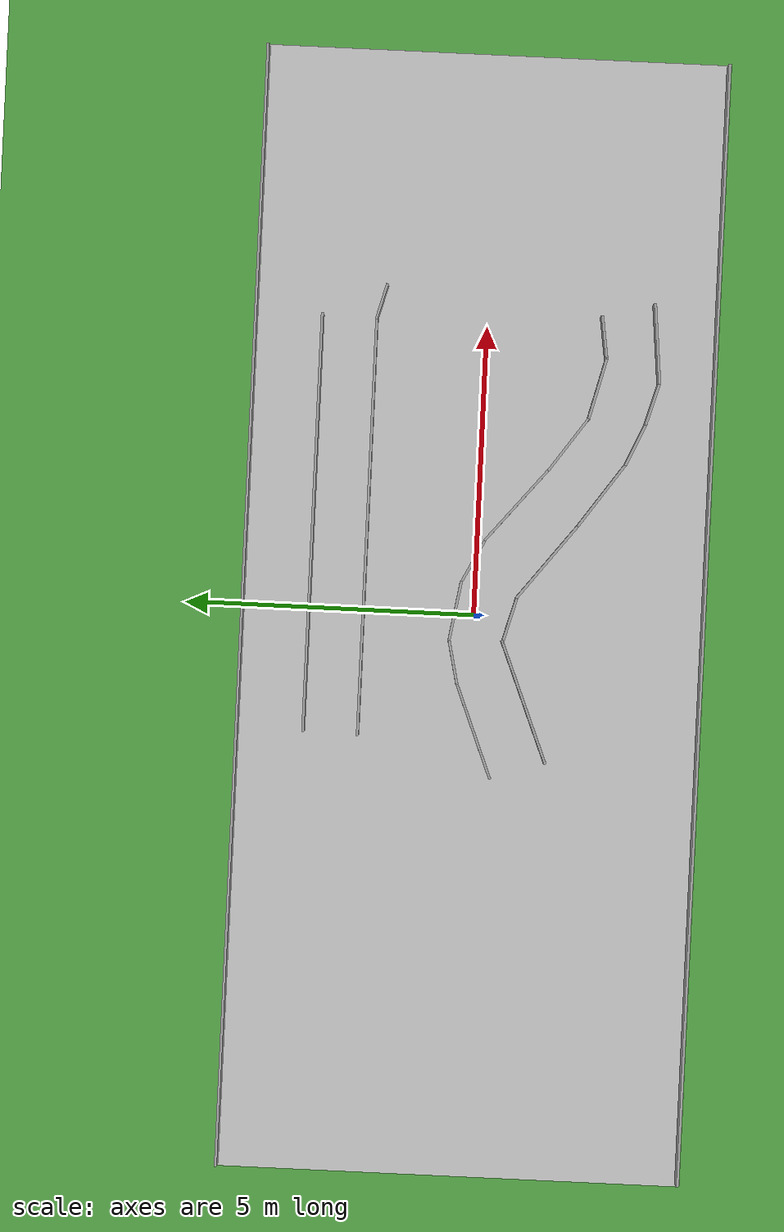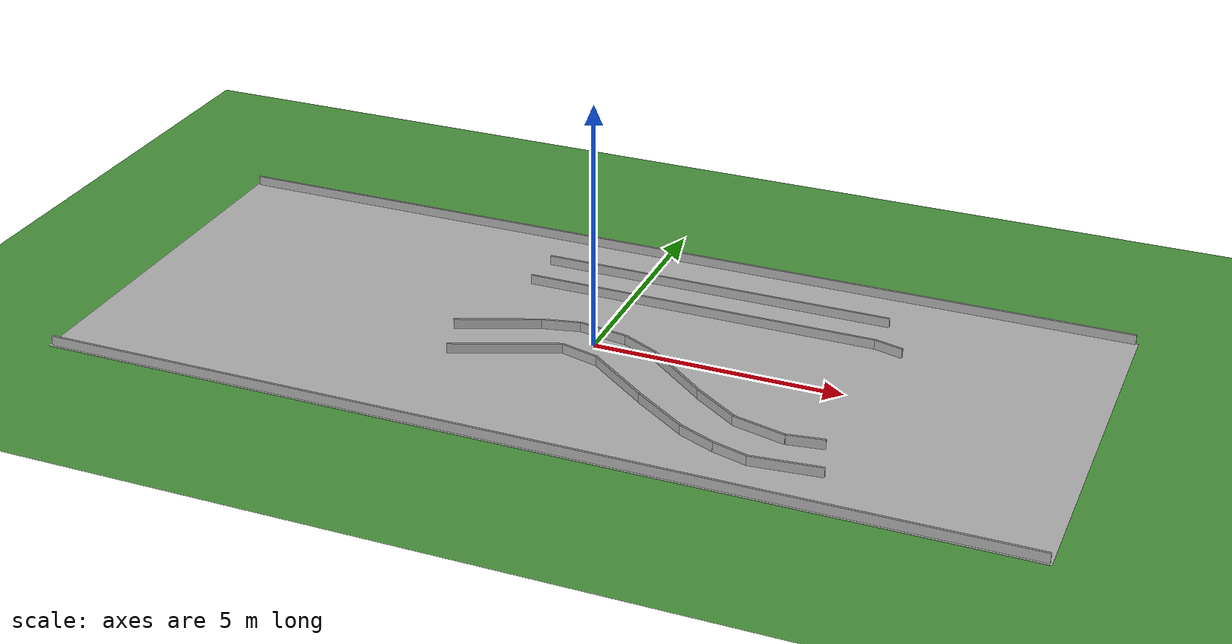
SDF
<sdf version="1.5">
 <world name="default">
  <model name="ground_grass">
   <static>1</static>
   <link name="ground_grass">
    <collision name="collision">
     <geometry><plane><normal>0 0 1</normal><size>50 50</size></plane></geometry>
     <surface><friction><ode><mu>100</mu><mu2>50</mu2></ode></friction></surface>
    </collision>
    <visual name="visual_ground">
     <cast_shadows>0</cast_shadows>
     <pose>0 0 0.005 0 -0 0</pose>
     <geometry><plane><normal>0 0 1</normal><size>50 50</size></plane></geometry>
     <material>
      <script>
       <uri>model://ground_grass/materials/scripts</uri>
       <uri>model://ground_grass/materials/textures</uri>
       <name>Floor/Grass</name>
      </script>
     </material>
    </visual>
    <velocity_decay><linear>0</linear><angular>0</angular></velocity_decay>
   </link>
  </model>
  <model name="ucsd_track_v1">
   <static>1</static>
   <link name="link_track">
    <collision name="collision">
     <geometry><plane><normal>0 0 1</normal><size>19.431 8.0264</size></plane></geometry>
     <surface><friction><ode><mu>100</mu><mu2>50</mu2></ode></friction></surface>
    </collision>
    <visual name="visual_ground">
     <cast_shadows>0</cast_shadows>
     <pose>0 0 0.005 0 -0 0</pose>
     <geometry><plane><normal>0 0 1</normal><size>19.431 8.0264</size></plane></geometry>
     <material>
      <script>
       <uri>model://ucsd_track_v1/materials/scripts</uri>
       <uri>model://ucsd_track_v1/materials/textures</uri>
       <name>Floor/Image</name>
      </script>
     </material>
    </visual>
    <velocity_decay><linear>0</linear><angular>0</angular></velocity_decay>
   </link>
   <pose>0 0 0.001 0 -0 0</pose>
  </model>
  <model name="grey_wall_1">
   <link name="link">
    <pose>0 0 1.4 0 0 -0.660395</pose>
    <inertial>
     <inertia><ixx>nan</ixx><ixy>0</ixy><ixz>0</ixz><iyy>nan</iyy><iyz>0</iyz><izz>nan</izz></inertia>
     <mass>0</mass>
    </inertial>
    <visual name="visual">
     <cast_shadows>0</cast_shadows>
     <geometry><box><size>1.62445 0.043266 0.226147</size></box></geometry>
     <material>
      <script>
       <uri>model://grey_wall/materials/scripts</uri>
       <uri>model://grey_wall/materials/textures</uri>
       <name>vrc/grey_wall</name>
      </script>
      <ambient>1 1 1 1</ambient>
      <diffuse>1 1 1 1</diffuse>
      <specular>0 0 0 1</specular>
      <emissive>0 0 0 1</emissive>
     </material>
    </visual>
    <collision name="collision">
     <geometry><box><size>1.62445 0.043266 0.226147</size></box></geometry>
     <surface>
      <friction>
       <ode><mu>1</mu><mu2>1</mu2><fdir1>0 0 0</fdir1><slip1>0</slip1><slip2>0</slip2></ode>
       <torsional>
        <coefficient>1</coefficient>
        <patch_radius>0</patch_radius>
        <surface_radius>0</surface_radius>
        <use_patch_radius>1</use_patch_radius>
        <ode><slip>0</slip></ode>
       </torsional>
      </friction>
      <bounce><restitution_coefficient>0</restitution_coefficient><threshold>1e+06</threshold></bounce>
      <contact>
       <collide_without_contact>0</collide_without_contact>
       <collide_without_contact_bitmask>1</collide_without_contact_bitmask>
       <collide_bitmask>1</collide_bitmask>
       <ode>
        <soft_cfm>0</soft_cfm>
        <soft_erp>0.2</soft_erp>
        <kp>1e+13</kp>
        <kd>1</kd>
        <max_vel>0.01</max_vel>
        <min_depth>0</min_depth>
       </ode>
       <bullet>
        <split_impulse>1</split_impulse>
        <split_impulse_penetration_threshold>-0.01</split_impulse_penetration_threshold>
        <soft_cfm>0</soft_cfm>
        <soft_erp>0.2</soft_erp>
        <kp>1e+13</kp>
        <kd>1</kd>
       </bullet>
      </contact>
     </surface>
    </collision>
   </link>
   <static>1</static>
   <pose>0.973487 -1.21034 -1.30469 0 -0 0</pose>
  </model>
  <model name="grey_wall_3">
   <link name="link">
    <pose>0.713484 -0.011654 1.4 0 -0 0</pose>
    <inertial>
     <inertia><ixx>nan</ixx><ixy>0</ixy><ixz>0</ixz><iyy>nan</iyy><iyz>0</iyz><izz>nan</izz></inertia>
     <mass>0</mass>
    </inertial>
    <visual name="visual">
     <cast_shadows>0</cast_shadows>
     <geometry><box><size>19.3332 0.043266 0.226147</size></box></geometry>
     <material>
      <script>
       <uri>model://grey_wall/materials/scripts</uri>
       <uri>model://grey_wall/materials/textures</uri>
       <name>vrc/grey_wall</name>
      </script>
      <ambient>1 1 1 1</ambient>
      <diffuse>1 1 1 1</diffuse>
      <specular>0 0 0 1</specular>
      <emissive>0 0 0 1</emissive>
     </material>
    </visual>
    <collision name="collision">
     <geometry><box><size>19.3332 0.043266 0.226147</size></box></geometry>
     <surface>
      <friction>
       <ode><mu>1</mu><mu2>1</mu2><fdir1>0 0 0</fdir1><slip1>0</slip1><slip2>0</slip2></ode>
       <torsional>
        <coefficient>1</coefficient>
        <patch_radius>0</patch_radius>
        <surface_radius>0</surface_radius>
        <use_patch_radius>1</use_patch_radius>
        <ode><slip>0</slip></ode>
       </torsional>
      </friction>
      <bounce><restitution_coefficient>0</restitution_coefficient><threshold>1e+06</threshold></bounce>
      <contact>
       <collide_without_contact>0</collide_without_contact>
       <collide_without_contact_bitmask>1</collide_without_contact_bitmask>
       <collide_bitmask>1</collide_bitmask>
       <ode>
        <soft_cfm>0</soft_cfm>
        <soft_erp>0.2</soft_erp>
        <kp>1e+13</kp>
        <kd>1</kd>
        <max_vel>0.01</max_vel>
        <min_depth>0</min_depth>
       </ode>
       <bullet>
        <split_impulse>1</split_impulse>
        <split_impulse_penetration_threshold>-0.01</split_impulse_penetration_threshold>
        <soft_cfm>0</soft_cfm>
        <soft_erp>0.2</soft_erp>
        <kp>1e+13</kp>
        <kd>1</kd>
       </bullet>
      </contact>
     </surface>
    </collision>
   </link>
   <static>1</static>
   <pose>-0.716038 4.0109 -1.30508 0 -0 0</pose>
  </model>
  <model name="grey_wall_4">
   <link name="link">
    <pose>0.713484 -0.011654 1.4 0 -0 0</pose>
    <inertial>
     <inertia><ixx>nan</ixx><ixy>0</ixy><ixz>0</ixz><iyy>nan</iyy><iyz>0</iyz><izz>nan</izz></inertia>
     <mass>0</mass>
    </inertial>
    <visual name="visual">
     <cast_shadows>0</cast_shadows>
     <geometry><box><size>19.3332 0.043266 0.226147</size></box></geometry>
     <material>
      <script>
       <uri>model://grey_wall/materials/scripts</uri>
       <uri>model://grey_wall/materials/textures</uri>
       <name>vrc/grey_wall</name>
      </script>
      <ambient>1 1 1 1</ambient>
      <diffuse>1 1 1 1</diffuse>
      <specular>0 0 0 1</specular>
      <emissive>0 0 0 1</emissive>
     </material>
    </visual>
    <collision name="collision">
     <geometry><box><size>19.3332 0.043266 0.226147</size></box></geometry>
     <surface>
      <friction>
       <ode><mu>1</mu><mu2>1</mu2><fdir1>0 0 0</fdir1><slip1>0</slip1><slip2>0</slip2></ode>
       <torsional>
        <coefficient>1</coefficient>
        <patch_radius>0</patch_radius>
        <surface_radius>0</surface_radius>
        <use_patch_radius>1</use_patch_radius>
        <ode><slip>0</slip></ode>
       </torsional>
      </friction>
      <bounce><restitution_coefficient>0</restitution_coefficient><threshold>1e+06</threshold></bounce>
      <contact>
       <collide_without_contact>0</collide_without_contact>
       <collide_without_contact_bitmask>1</collide_without_contact_bitmask>
       <collide_bitmask>1</collide_bitmask>
       <ode>
        <soft_cfm>0</soft_cfm>
        <soft_erp>0.2</soft_erp>
        <kp>1e+13</kp>
        <kd>1</kd>
        <max_vel>0.01</max_vel>
        <min_depth>0</min_depth>
       </ode>
       <bullet>
        <split_impulse>1</split_impulse>
        <split_impulse_penetration_threshold>-0.01</split_impulse_penetration_threshold>
        <soft_cfm>0</soft_cfm>
        <soft_erp>0.2</soft_erp>
        <kp>1e+13</kp>
        <kd>1</kd>
       </bullet>
      </contact>
     </surface>
    </collision>
   </link>
   <static>1</static>
   <pose>-0.701966 -3.93959 -1.30508 0 -0 0</pose>
  </model>
  <model name="grey_wall_12">
   <link name="link">
    <pose>0 0 1.4 0 -0 0.382885</pose>
    <inertial>
     <inertia><ixx>nan</ixx><ixy>0</ixy><ixz>0</ixz><iyy>nan</iyy><iyz>0</iyz><izz>nan</izz></inertia>
     <mass>0</mass>
    </inertial>
    <visual name="visual">
     <cast_shadows>0</cast_shadows>
     <geometry><box><size>2.25374 0.043266 0.226147</size></box></geometry>
     <material>
      <script>
       <uri>model://grey_wall/materials/scripts</uri>
       <uri>model://grey_wall/materials/textures</uri>
       <name>vrc/grey_wall</name>
      </script>
      <ambient>1 1 1 1</ambient>
      <diffuse>1 1 1 1</diffuse>
      <specular>0 0 0 1</specular>
      <emissive>0 0 0 1</emissive>
     </material>
    </visual>
    <collision name="collision">
     <geometry><box><size>2.25374 0.043266 0.226147</size></box></geometry>
     <surface>
      <friction>
       <ode><mu>1</mu><mu2>1</mu2><fdir1>0 0 0</fdir1><slip1>0</slip1><slip2>0</slip2></ode>
       <torsional>
        <coefficient>1</coefficient>
        <patch_radius>0</patch_radius>
        <surface_radius>0</surface_radius>
        <use_patch_radius>1</use_patch_radius>
        <ode><slip>0</slip></ode>
       </torsional>
      </friction>
      <bounce><restitution_coefficient>0</restitution_coefficient><threshold>1e+06</threshold></bounce>
      <contact>
       <collide_without_contact>0</collide_without_contact>
       <collide_without_contact_bitmask>1</collide_without_contact_bitmask>
       <collide_bitmask>1</collide_bitmask>
       <ode>
        <soft_cfm>0</soft_cfm>
        <soft_erp>0.2</soft_erp>
        <kp>1e+13</kp>
        <kd>1</kd>
        <max_vel>0.01</max_vel>
        <min_depth>0</min_depth>
       </ode>
       <bullet>
        <split_impulse>1</split_impulse>
        <split_impulse_penetration_threshold>-0.01</split_impulse_penetration_threshold>
        <soft_cfm>0</soft_cfm>
        <soft_erp>0.2</soft_erp>
        <kp>1e+13</kp>
        <kd>1</kd>
       </bullet>
      </contact>
     </surface>
    </collision>
   </link>
   <static>1</static>
   <pose>-1.45423 -0.91787 -1.30539 0 -0 0</pose>
  </model>
  <model name="grey_wall_13">
   <link name="link">
    <pose>0 0 1.4 0 0 -0.265752</pose>
    <inertial>
     <inertia><ixx>nan</ixx><ixy>0</ixy><ixz>0</ixz><iyy>nan</iyy><iyz>0</iyz><izz>nan</izz></inertia>
     <mass>0</mass>
    </inertial>
    <visual name="visual">
     <cast_shadows>0</cast_shadows>
     <geometry><box><size>0.835499 0.043266 0.226147</size></box></geometry>
     <material>
      <script>
       <uri>model://grey_wall/materials/scripts</uri>
       <uri>model://grey_wall/materials/textures</uri>
       <name>vrc/grey_wall</name>
      </script>
      <ambient>1 1 1 1</ambient>
      <diffuse>1 1 1 1</diffuse>
      <specular>0 0 0 1</specular>
      <emissive>0 0 0 1</emissive>
     </material>
    </visual>
    <collision name="collision">
     <geometry><box><size>0.835499 0.043266 0.226147</size></box></geometry>
     <surface>
      <friction>
       <ode><mu>1</mu><mu2>1</mu2><fdir1>0 0 0</fdir1><slip1>0</slip1><slip2>0</slip2></ode>
       <torsional>
        <coefficient>1</coefficient>
        <patch_radius>0</patch_radius>
        <surface_radius>0</surface_radius>
        <use_patch_radius>1</use_patch_radius>
        <ode><slip>0</slip></ode>
       </torsional>
      </friction>
      <bounce><restitution_coefficient>0</restitution_coefficient><threshold>1e+06</threshold></bounce>
      <contact>
       <collide_without_contact>0</collide_without_contact>
       <collide_without_contact_bitmask>1</collide_without_contact_bitmask>
       <collide_bitmask>1</collide_bitmask>
       <ode>
        <soft_cfm>0</soft_cfm>
        <soft_erp>0.2</soft_erp>
        <kp>1e+13</kp>
        <kd>1</kd>
        <max_vel>0.01</max_vel>
        <min_depth>0</min_depth>
       </ode>
       <bullet>
        <split_impulse>1</split_impulse>
        <split_impulse_penetration_threshold>-0.01</split_impulse_penetration_threshold>
        <soft_cfm>0</soft_cfm>
        <soft_erp>0.2</soft_erp>
        <kp>1e+13</kp>
        <kd>1</kd>
       </bullet>
      </contact>
     </surface>
    </collision>
   </link>
   <static>1</static>
   <pose>-0.042418 -0.617739 -1.30539 0 -0 0</pose>
  </model>
  <model name="grey_wall_17">
   <link name="link">
    <pose>0 0 1.4 0 -0 0</pose>
    <inertial>
     <inertia><ixx>nan</ixx><ixy>0</ixy><ixz>0</ixz><iyy>nan</iyy><iyz>0</iyz><izz>nan</izz></inertia>
     <mass>0</mass>
    </inertial>
    <visual name="visual">
     <cast_shadows>0</cast_shadows>
     <geometry><box><size>7.20978 0.043266 0.226147</size></box></geometry>
     <material>
      <script>
       <uri>model://grey_wall/materials/scripts</uri>
       <uri>model://grey_wall/materials/textures</uri>
       <name>vrc/grey_wall</name>
      </script>
      <ambient>1 1 1 1</ambient>
      <diffuse>1 1 1 1</diffuse>
      <specular>0 0 0 1</specular>
      <emissive>0 0 0 1</emissive>
     </material>
    </visual>
    <collision name="collision">
     <geometry><box><size>7.20978 0.043266 0.226147</size></box></geometry>
     <surface>
      <friction>
       <ode><mu>1</mu><mu2>1</mu2><fdir1>0 0 0</fdir1><slip1>0</slip1><slip2>0</slip2></ode>
       <torsional>
        <coefficient>1</coefficient>
        <patch_radius>0</patch_radius>
        <surface_radius>0</surface_radius>
        <use_patch_radius>1</use_patch_radius>
        <ode><slip>0</slip></ode>
       </torsional>
      </friction>
      <bounce><restitution_coefficient>0</restitution_coefficient><threshold>1e+06</threshold></bounce>
      <contact>
       <collide_without_contact>0</collide_without_contact>
       <collide_without_contact_bitmask>1</collide_without_contact_bitmask>
       <collide_bitmask>1</collide_bitmask>
       <ode>
        <soft_cfm>0</soft_cfm>
        <soft_erp>0.2</soft_erp>
        <kp>1e+13</kp>
        <kd>1</kd>
        <max_vel>0.01</max_vel>
        <min_depth>0</min_depth>
       </ode>
       <bullet>
        <split_impulse>1</split_impulse>
        <split_impulse_penetration_threshold>-0.01</split_impulse_penetration_threshold>
        <soft_cfm>0</soft_cfm>
        <soft_erp>0.2</soft_erp>
        <kp>1e+13</kp>
        <kd>1</kd>
       </bullet>
      </contact>
     </surface>
    </collision>
   </link>
   <static>1</static>
   <pose>1.44796 1.9115 -1.30759 0 -0 0</pose>
  </model>
  <model name="grey_wall_18">
   <link name="link">
    <pose>0 0 1.4 0 -0 0</pose>
    <inertial>
     <inertia><ixx>nan</ixx><ixy>0</ixy><ixz>0</ixz><iyy>nan</iyy><iyz>0</iyz><izz>nan</izz></inertia>
     <mass>0</mass>
    </inertial>
    <visual name="visual">
     <cast_shadows>0</cast_shadows>
     <geometry><box><size>7.20978 0.043266 0.226147</size></box></geometry>
     <material>
      <script>
       <uri>model://grey_wall/materials/scripts</uri>
       <uri>model://grey_wall/materials/textures</uri>
       <name>vrc/grey_wall</name>
      </script>
      <ambient>1 1 1 1</ambient>
      <diffuse>1 1 1 1</diffuse>
      <specular>0 0 0 1</specular>
      <emissive>0 0 0 1</emissive>
     </material>
    </visual>
    <collision name="collision">
     <geometry><box><size>7.20978 0.043266 0.226147</size></box></geometry>
     <surface>
      <friction>
       <ode><mu>1</mu><mu2>1</mu2><fdir1>0 0 0</fdir1><slip1>0</slip1><slip2>0</slip2></ode>
       <torsional>
        <coefficient>1</coefficient>
        <patch_radius>0</patch_radius>
        <surface_radius>0</surface_radius>
        <use_patch_radius>1</use_patch_radius>
        <ode><slip>0</slip></ode>
       </torsional>
      </friction>
      <bounce><restitution_coefficient>0</restitution_coefficient><threshold>1e+06</threshold></bounce>
      <contact>
       <collide_without_contact>0</collide_without_contact>
       <collide_without_contact_bitmask>1</collide_without_contact_bitmask>
       <collide_bitmask>1</collide_bitmask>
       <ode>
        <soft_cfm>0</soft_cfm>
        <soft_erp>0.2</soft_erp>
        <kp>1e+13</kp>
        <kd>1</kd>
        <max_vel>0.01</max_vel>
        <min_depth>0</min_depth>
       </ode>
       <bullet>
        <split_impulse>1</split_impulse>
        <split_impulse_penetration_threshold>-0.01</split_impulse_penetration_threshold>
        <soft_cfm>0</soft_cfm>
        <soft_erp>0.2</soft_erp>
        <kp>1e+13</kp>
        <kd>1</kd>
       </bullet>
      </contact>
     </surface>
    </collision>
   </link>
   <static>1</static>
   <pose>1.47433 2.85123 -1.30759 0 -0 0</pose>
  </model>
  <model name="grey_wall_26">
   <link name="link">
    <pose>0.696537 0.076716 1.4 0 -0 0.222578</pose>
    <inertial>
     <inertia><ixx>nan</ixx><ixy>0</ixy><ixz>0</ixz><iyy>nan</iyy><iyz>0</iyz><izz>nan</izz></inertia>
     <mass>0</mass>
    </inertial>
    <visual name="visual">
     <cast_shadows>0</cast_shadows>
     <geometry><box><size>0.800766 0.043266 0.226147</size></box></geometry>
     <material>
      <script>
       <uri>model://grey_wall/materials/scripts</uri>
       <uri>model://grey_wall/materials/textures</uri>
       <name>vrc/grey_wall</name>
      </script>
      <ambient>1 1 1 1</ambient>
      <diffuse>1 1 1 1</diffuse>
      <specular>0 0 0 1</specular>
      <emissive>0 0 0 1</emissive>
     </material>
    </visual>
    <collision name="collision">
     <geometry><box><size>0.800766 0.043266 0.226147</size></box></geometry>
     <surface>
      <friction>
       <ode><mu>1</mu><mu2>1</mu2><fdir1>0 0 0</fdir1><slip1>0</slip1><slip2>0</slip2></ode>
       <torsional>
        <coefficient>1</coefficient>
        <patch_radius>0</patch_radius>
        <surface_radius>0</surface_radius>
        <use_patch_radius>1</use_patch_radius>
        <ode><slip>0</slip></ode>
       </torsional>
      </friction>
      <bounce><restitution_coefficient>0</restitution_coefficient><threshold>1e+06</threshold></bounce>
      <contact>
       <collide_without_contact>0</collide_without_contact>
       <collide_without_contact_bitmask>1</collide_without_contact_bitmask>
       <collide_bitmask>1</collide_bitmask>
       <ode>
        <soft_cfm>0</soft_cfm>
        <soft_erp>0.2</soft_erp>
        <kp>1e+13</kp>
        <kd>1</kd>
        <max_vel>0.01</max_vel>
        <min_depth>0</min_depth>
       </ode>
       <bullet>
        <split_impulse>1</split_impulse>
        <split_impulse_penetration_threshold>-0.01</split_impulse_penetration_threshold>
        <soft_cfm>0</soft_cfm>
        <soft_erp>0.2</soft_erp>
        <kp>1e+13</kp>
        <kd>1</kd>
       </bullet>
      </contact>
     </surface>
    </collision>
   </link>
   <static>1</static>
   <pose>-1.52613 0.248203 -1.30539 0 -0 0</pose>
  </model>
  <model name="grey_wall_27">
   <link name="link">
    <pose>0.075205 -0.060141 1.4 0 -0 0.379695</pose>
    <inertial>
     <inertia><ixx>nan</ixx><ixy>0</ixy><ixz>0</ixz><iyy>nan</iyy><iyz>0</iyz><izz>nan</izz></inertia>
     <mass>0</mass>
    </inertial>
    <visual name="visual">
     <cast_shadows>0</cast_shadows>
     <geometry><box><size>1.72288 0.043266 0.226147</size></box></geometry>
     <material>
      <script>
       <uri>model://grey_wall/materials/scripts</uri>
       <uri>model://grey_wall/materials/textures</uri>
       <name>vrc/grey_wall</name>
      </script>
      <ambient>1 1 1 1</ambient>
      <diffuse>1 1 1 1</diffuse>
      <specular>0 0 0 1</specular>
      <emissive>0 0 0 1</emissive>
     </material>
    </visual>
    <collision name="collision">
     <geometry><box><size>1.72288 0.043266 0.226147</size></box></geometry>
     <surface>
      <friction>
       <ode><mu>1</mu><mu2>1</mu2><fdir1>0 0 0</fdir1><slip1>0</slip1><slip2>0</slip2></ode>
       <torsional>
        <coefficient>1</coefficient>
        <patch_radius>0</patch_radius>
        <surface_radius>0</surface_radius>
        <use_patch_radius>1</use_patch_radius>
        <ode><slip>0</slip></ode>
       </torsional>
      </friction>
      <bounce><restitution_coefficient>0</restitution_coefficient><threshold>1e+06</threshold></bounce>
      <contact>
       <collide_without_contact>0</collide_without_contact>
       <collide_without_contact_bitmask>1</collide_without_contact_bitmask>
       <collide_bitmask>1</collide_bitmask>
       <ode>
        <soft_cfm>0</soft_cfm>
        <soft_erp>0.2</soft_erp>
        <kp>1e+13</kp>
        <kd>1</kd>
        <max_vel>0.01</max_vel>
        <min_depth>0</min_depth>
       </ode>
       <bullet>
        <split_impulse>1</split_impulse>
        <split_impulse_penetration_threshold>-0.01</split_impulse_penetration_threshold>
        <soft_cfm>0</soft_cfm>
        <soft_erp>0.2</soft_erp>
        <kp>1e+13</kp>
        <kd>1</kd>
       </bullet>
      </contact>
     </surface>
    </collision>
   </link>
   <static>1</static>
   <pose>-2.07457 -0.020126 -1.30331 0 -0 0</pose>
  </model>
  <model name="grey_wall_28">
   <link name="link">
    <pose>0 0 1.4 0 0 -0.690491</pose>
    <inertial>
     <inertia><ixx>nan</ixx><ixy>0</ixy><ixz>0</ixz><iyy>nan</iyy><iyz>0</iyz><izz>nan</izz></inertia>
     <mass>0</mass>
    </inertial>
    <visual name="visual">
     <cast_shadows>0</cast_shadows>
     <geometry><box><size>1.62445 0.043266 0.226147</size></box></geometry>
     <material>
      <script>
       <uri>model://grey_wall/materials/scripts</uri>
       <uri>model://grey_wall/materials/textures</uri>
       <name>vrc/grey_wall</name>
      </script>
      <ambient>1 1 1 1</ambient>
      <diffuse>1 1 1 1</diffuse>
      <specular>0 0 0 1</specular>
      <emissive>0 0 0 1</emissive>
     </material>
    </visual>
    <collision name="collision">
     <geometry><box><size>1.62445 0.043266 0.226147</size></box></geometry>
     <surface>
      <friction>
       <ode><mu>1</mu><mu2>1</mu2><fdir1>0 0 0</fdir1><slip1>0</slip1><slip2>0</slip2></ode>
       <torsional>
        <coefficient>1</coefficient>
        <patch_radius>0</patch_radius>
        <surface_radius>0</surface_radius>
        <use_patch_radius>1</use_patch_radius>
        <ode><slip>0</slip></ode>
       </torsional>
      </friction>
      <bounce><restitution_coefficient>0</restitution_coefficient><threshold>1e+06</threshold></bounce>
      <contact>
       <collide_without_contact>0</collide_without_contact>
       <collide_without_contact_bitmask>1</collide_without_contact_bitmask>
       <collide_bitmask>1</collide_bitmask>
       <ode>
        <soft_cfm>0</soft_cfm>
        <soft_erp>0.2</soft_erp>
        <kp>1e+13</kp>
        <kd>1</kd>
        <max_vel>0.01</max_vel>
        <min_depth>0</min_depth>
       </ode>
       <bullet>
        <split_impulse>1</split_impulse>
        <split_impulse_penetration_threshold>-0.01</split_impulse_penetration_threshold>
        <soft_cfm>0</soft_cfm>
        <soft_erp>0.2</soft_erp>
        <kp>1e+13</kp>
        <kd>1</kd>
       </bullet>
      </contact>
     </surface>
    </collision>
   </link>
   <static>1</static>
   <pose>1.9243 -0.636533 -1.30469 0 -0 0</pose>
  </model>
  <model name="grey_wall_29">
   <link name="link">
    <pose>0.513561 -0.234559 1.4 0 0 -0.470145</pose>
    <inertial>
     <inertia><ixx>nan</ixx><ixy>0</ixy><ixz>0</ixz><iyy>nan</iyy><iyz>0</iyz><izz>nan</izz></inertia>
     <mass>0</mass>
    </inertial>
    <visual name="visual">
     <cast_shadows>0</cast_shadows>
     <geometry><box><size>0.850335 0.043266 0.226147</size></box></geometry>
     <material>
      <script>
       <uri>model://grey_wall/materials/scripts</uri>
       <uri>model://grey_wall/materials/textures</uri>
       <name>vrc/grey_wall</name>
      </script>
      <ambient>1 1 1 1</ambient>
      <diffuse>1 1 1 1</diffuse>
      <specular>0 0 0 1</specular>
      <emissive>0 0 0 1</emissive>
     </material>
    </visual>
    <collision name="collision">
     <geometry><box><size>0.850335 0.043266 0.226147</size></box></geometry>
     <surface>
      <friction>
       <ode><mu>1</mu><mu2>1</mu2><fdir1>0 0 0</fdir1><slip1>0</slip1><slip2>0</slip2></ode>
       <torsional>
        <coefficient>1</coefficient>
        <patch_radius>0</patch_radius>
        <surface_radius>0</surface_radius>
        <use_patch_radius>1</use_patch_radius>
        <ode><slip>0</slip></ode>
       </torsional>
      </friction>
      <bounce><restitution_coefficient>0</restitution_coefficient><threshold>1e+06</threshold></bounce>
      <contact>
       <collide_without_contact>0</collide_without_contact>
       <collide_without_contact_bitmask>1</collide_without_contact_bitmask>
       <collide_bitmask>1</collide_bitmask>
       <ode>
        <soft_cfm>0</soft_cfm>
        <soft_erp>0.2</soft_erp>
        <kp>1e+13</kp>
        <kd>1</kd>
        <max_vel>0.01</max_vel>
        <min_depth>0</min_depth>
       </ode>
       <bullet>
        <split_impulse>1</split_impulse>
        <split_impulse_penetration_threshold>-0.01</split_impulse_penetration_threshold>
        <soft_cfm>0</soft_cfm>
        <soft_erp>0.2</soft_erp>
        <kp>1e+13</kp>
        <kd>1</kd>
       </bullet>
      </contact>
     </surface>
    </collision>
   </link>
   <static>1</static>
   <pose>0.423351 0.292484 -1.30552 0 -0 0</pose>
  </model>
  <model name="grey_wall_30">
   <link name="link">
    <pose>0.178472 -0.112837 1.4 0 0 -0.161294</pose>
    <inertial>
     <inertia><ixx>nan</ixx><ixy>0</ixy><ixz>0</ixz><iyy>nan</iyy><iyz>0</iyz><izz>nan</izz></inertia>
     <mass>0</mass>
    </inertial>
    <visual name="visual">
     <cast_shadows>0</cast_shadows>
     <geometry><box><size>1.0471 0.043266 0.226147</size></box></geometry>
     <material>
      <script>
       <uri>model://grey_wall/materials/scripts</uri>
       <uri>model://grey_wall/materials/textures</uri>
       <name>vrc/grey_wall</name>
      </script>
      <ambient>1 1 1 1</ambient>
      <diffuse>1 1 1 1</diffuse>
      <specular>0 0 0 1</specular>
      <emissive>0 0 0 1</emissive>
     </material>
    </visual>
    <collision name="collision">
     <geometry><box><size>1.0471 0.043266 0.226147</size></box></geometry>
     <surface>
      <friction>
       <ode><mu>1</mu><mu2>1</mu2><fdir1>0 0 0</fdir1><slip1>0</slip1><slip2>0</slip2></ode>
       <torsional>
        <coefficient>1</coefficient>
        <patch_radius>0</patch_radius>
        <surface_radius>0</surface_radius>
        <use_patch_radius>1</use_patch_radius>
        <ode><slip>0</slip></ode>
       </torsional>
      </friction>
      <bounce><restitution_coefficient>0</restitution_coefficient><threshold>1e+06</threshold></bounce>
      <contact>
       <collide_without_contact>0</collide_without_contact>
       <collide_without_contact_bitmask>1</collide_without_contact_bitmask>
       <collide_bitmask>1</collide_bitmask>
       <ode>
        <soft_cfm>0</soft_cfm>
        <soft_erp>0.2</soft_erp>
        <kp>1e+13</kp>
        <kd>1</kd>
        <max_vel>0.01</max_vel>
        <min_depth>0</min_depth>
       </ode>
       <bullet>
        <split_impulse>1</split_impulse>
        <split_impulse_penetration_threshold>-0.01</split_impulse_penetration_threshold>
        <soft_cfm>0</soft_cfm>
        <soft_erp>0.2</soft_erp>
        <kp>1e+13</kp>
        <kd>1</kd>
       </bullet>
      </contact>
     </surface>
    </collision>
   </link>
   <static>1</static>
   <pose>-0.114316 0.442475 -1.30539 0 -0 0</pose>
  </model>
  <model name="grey_wall_31">
   <link name="link">
    <pose>-0.158404 0.045001 1.4 0 0 -0.613938</pose>
    <inertial>
     <inertia><ixx>nan</ixx><ixy>0</ixy><ixz>0</ixz><iyy>nan</iyy><iyz>0</iyz><izz>nan</izz></inertia>
     <mass>0</mass>
    </inertial>
    <visual name="visual">
     <cast_shadows>0</cast_shadows>
     <geometry><box><size>1.13903 0.043266 0.226147</size></box></geometry>
     <material>
      <script>
       <uri>model://grey_wall/materials/scripts</uri>
       <uri>model://grey_wall/materials/textures</uri>
       <name>vrc/grey_wall</name>
      </script>
      <ambient>1 1 1 1</ambient>
      <diffuse>1 1 1 1</diffuse>
      <specular>0 0 0 1</specular>
      <emissive>0 0 0 1</emissive>
     </material>
    </visual>
    <collision name="collision">
     <geometry><box><size>1.13903 0.043266 0.226147</size></box></geometry>
     <surface>
      <friction>
       <ode><mu>1</mu><mu2>1</mu2><fdir1>0 0 0</fdir1><slip1>0</slip1><slip2>0</slip2></ode>
       <torsional>
        <coefficient>1</coefficient>
        <patch_radius>0</patch_radius>
        <surface_radius>0</surface_radius>
        <use_patch_radius>1</use_patch_radius>
        <ode><slip>0</slip></ode>
       </torsional>
      </friction>
      <bounce><restitution_coefficient>0</restitution_coefficient><threshold>1e+06</threshold></bounce>
      <contact>
       <collide_without_contact>0</collide_without_contact>
       <collide_without_contact_bitmask>1</collide_without_contact_bitmask>
       <collide_bitmask>1</collide_bitmask>
       <ode>
        <soft_cfm>0</soft_cfm>
        <soft_erp>0.2</soft_erp>
        <kp>1e+13</kp>
        <kd>1</kd>
        <max_vel>0.01</max_vel>
        <min_depth>0</min_depth>
       </ode>
       <bullet>
        <split_impulse>1</split_impulse>
        <split_impulse_penetration_threshold>-0.01</split_impulse_penetration_threshold>
        <soft_cfm>0</soft_cfm>
        <soft_erp>0.2</soft_erp>
        <kp>1e+13</kp>
        <kd>1</kd>
       </bullet>
      </contact>
     </surface>
    </collision>
   </link>
   <static>1</static>
   <pose>3.16473 -1.52452 -1.30469 0 -0 0</pose>
  </model>
  <model name="grey_wall_32">
   <link name="link">
    <pose>-0.029415 -0.005021 1.4 0 0 -0.614085</pose>
    <inertial>
     <inertia><ixx>nan</ixx><ixy>0</ixy><ixz>0</ixz><iyy>nan</iyy><iyz>0</iyz><izz>nan</izz></inertia>
     <mass>0</mass>
    </inertial>
    <visual name="visual">
     <cast_shadows>0</cast_shadows>
     <geometry><box><size>1.36861 0.043266 0.226147</size></box></geometry>
     <material>
      <script>
       <uri>model://grey_wall/materials/scripts</uri>
       <uri>model://grey_wall/materials/textures</uri>
       <name>vrc/grey_wall</name>
      </script>
      <ambient>1 1 1 1</ambient>
      <diffuse>1 1 1 1</diffuse>
      <specular>0 0 0 1</specular>
      <emissive>0 0 0 1</emissive>
     </material>
    </visual>
    <collision name="collision">
     <geometry><box><size>1.36861 0.043266 0.226147</size></box></geometry>
     <surface>
      <friction>
       <ode><mu>1</mu><mu2>1</mu2><fdir1>0 0 0</fdir1><slip1>0</slip1><slip2>0</slip2></ode>
       <torsional>
        <coefficient>1</coefficient>
        <patch_radius>0</patch_radius>
        <surface_radius>0</surface_radius>
        <use_patch_radius>1</use_patch_radius>
        <ode><slip>0</slip></ode>
       </torsional>
      </friction>
      <bounce><restitution_coefficient>0</restitution_coefficient><threshold>1e+06</threshold></bounce>
      <contact>
       <collide_without_contact>0</collide_without_contact>
       <collide_without_contact_bitmask>1</collide_without_contact_bitmask>
       <collide_bitmask>1</collide_bitmask>
       <ode>
        <soft_cfm>0</soft_cfm>
        <soft_erp>0.2</soft_erp>
        <kp>1e+13</kp>
        <kd>1</kd>
        <max_vel>0.01</max_vel>
        <min_depth>0</min_depth>
       </ode>
       <bullet>
        <split_impulse>1</split_impulse>
        <split_impulse_penetration_threshold>-0.01</split_impulse_penetration_threshold>
        <soft_cfm>0</soft_cfm>
        <soft_erp>0.2</soft_erp>
        <kp>1e+13</kp>
        <kd>1</kd>
       </bullet>
      </contact>
     </surface>
    </collision>
   </link>
   <static>1</static>
   <pose>2.17576 -2.07883 -1.30469 0 -0 0</pose>
  </model>
  <model name="grey_wall_33">
   <link name="link">
    <pose>-0.098349 0.008745 1.4 0 0 -0.277377</pose>
    <inertial>
     <inertia><ixx>nan</ixx><ixy>0</ixy><ixz>0</ixz><iyy>nan</iyy><iyz>0</iyz><izz>nan</izz></inertia>
     <mass>0</mass>
    </inertial>
    <visual name="visual">
     <cast_shadows>0</cast_shadows>
     <geometry><box><size>0.74199 0.043266 0.226147</size></box></geometry>
     <material>
      <script>
       <uri>model://grey_wall/materials/scripts</uri>
       <uri>model://grey_wall/materials/textures</uri>
       <name>vrc/grey_wall</name>
      </script>
      <ambient>1 1 1 1</ambient>
      <diffuse>1 1 1 1</diffuse>
      <specular>0 0 0 1</specular>
      <emissive>0 0 0 1</emissive>
     </material>
    </visual>
    <collision name="collision">
     <geometry><box><size>0.74199 0.043266 0.226147</size></box></geometry>
     <surface>
      <friction>
       <ode><mu>1</mu><mu2>1</mu2><fdir1>0 0 0</fdir1><slip1>0</slip1><slip2>0</slip2></ode>
       <torsional>
        <coefficient>1</coefficient>
        <patch_radius>0</patch_radius>
        <surface_radius>0</surface_radius>
        <use_patch_radius>1</use_patch_radius>
        <ode><slip>0</slip></ode>
       </torsional>
      </friction>
      <bounce><restitution_coefficient>0</restitution_coefficient><threshold>1e+06</threshold></bounce>
      <contact>
       <collide_without_contact>0</collide_without_contact>
       <collide_without_contact_bitmask>1</collide_without_contact_bitmask>
       <collide_bitmask>1</collide_bitmask>
       <ode>
        <soft_cfm>0</soft_cfm>
        <soft_erp>0.2</soft_erp>
        <kp>1e+13</kp>
        <kd>1</kd>
        <max_vel>0.01</max_vel>
        <min_depth>0</min_depth>
       </ode>
       <bullet>
        <split_impulse>1</split_impulse>
        <split_impulse_penetration_threshold>-0.01</split_impulse_penetration_threshold>
        <soft_cfm>0</soft_cfm>
        <soft_erp>0.2</soft_erp>
        <kp>1e+13</kp>
        <kd>1</kd>
       </bullet>
      </contact>
     </surface>
    </collision>
   </link>
   <static>1</static>
   <pose>3.86395 -2.90069 -1.30469 0 -0 0</pose>
  </model>
  <model name="grey_wall_34">
   <link name="link">
    <pose>-0.049018 0.053505 1.4 0 0 -0.416993</pose>
    <inertial>
     <inertia><ixx>nan</ixx><ixy>0</ixy><ixz>0</ixz><iyy>nan</iyy><iyz>0</iyz><izz>nan</izz></inertia>
     <mass>0</mass>
    </inertial>
    <visual name="visual">
     <cast_shadows>0</cast_shadows>
     <geometry><box><size>0.80991 0.043266 0.226147</size></box></geometry>
     <material>
      <script>
       <uri>model://grey_wall/materials/scripts</uri>
       <uri>model://grey_wall/materials/textures</uri>
       <name>vrc/grey_wall</name>
      </script>
      <ambient>1 1 1 1</ambient>
      <diffuse>1 1 1 1</diffuse>
      <specular>0 0 0 1</specular>
      <emissive>0 0 0 1</emissive>
     </material>
    </visual>
    <collision name="collision">
     <geometry><box><size>0.80991 0.043266 0.226147</size></box></geometry>
     <surface>
      <friction>
       <ode><mu>1</mu><mu2>1</mu2><fdir1>0 0 0</fdir1><slip1>0</slip1><slip2>0</slip2></ode>
       <torsional>
        <coefficient>1</coefficient>
        <patch_radius>0</patch_radius>
        <surface_radius>0</surface_radius>
        <use_patch_radius>1</use_patch_radius>
        <ode><slip>0</slip></ode>
       </torsional>
      </friction>
      <bounce><restitution_coefficient>0</restitution_coefficient><threshold>1e+06</threshold></bounce>
      <contact>
       <collide_without_contact>0</collide_without_contact>
       <collide_without_contact_bitmask>1</collide_without_contact_bitmask>
       <collide_bitmask>1</collide_bitmask>
       <ode>
        <soft_cfm>0</soft_cfm>
        <soft_erp>0.2</soft_erp>
        <kp>1e+13</kp>
        <kd>1</kd>
        <max_vel>0.01</max_vel>
        <min_depth>0</min_depth>
       </ode>
       <bullet>
        <split_impulse>1</split_impulse>
        <split_impulse_penetration_threshold>-0.01</split_impulse_penetration_threshold>
        <soft_cfm>0</soft_cfm>
        <soft_erp>0.2</soft_erp>
        <kp>1e+13</kp>
        <kd>1</kd>
       </bullet>
      </contact>
     </surface>
    </collision>
   </link>
   <static>1</static>
   <pose>3.10185 -2.6852 -1.30469 0 -0 0</pose>
  </model>
  <model name="grey_wall_35">
   <link name="link">
    <pose>0.0163 0.042642 1.4 0 -0 0.098139</pose>
    <inertial>
     <inertia><ixx>nan</ixx><ixy>0</ixy><ixz>0</ixz><iyy>nan</iyy><iyz>0</iyz><izz>nan</izz></inertia>
     <mass>0</mass>
    </inertial>
    <visual name="visual">
     <cast_shadows>0</cast_shadows>
     <geometry><box><size>1.40091 0.043266 0.226147</size></box></geometry>
     <material>
      <script>
       <uri>model://grey_wall/materials/scripts</uri>
       <uri>model://grey_wall/materials/textures</uri>
       <name>vrc/grey_wall</name>
      </script>
      <ambient>1 1 1 1</ambient>
      <diffuse>1 1 1 1</diffuse>
      <specular>0 0 0 1</specular>
      <emissive>0 0 0 1</emissive>
     </material>
    </visual>
    <collision name="collision">
     <geometry><box><size>1.40091 0.043266 0.226147</size></box></geometry>
     <surface>
      <friction>
       <ode><mu>1</mu><mu2>1</mu2><fdir1>0 0 0</fdir1><slip1>0</slip1><slip2>0</slip2></ode>
       <torsional>
        <coefficient>1</coefficient>
        <patch_radius>0</patch_radius>
        <surface_radius>0</surface_radius>
        <use_patch_radius>1</use_patch_radius>
        <ode><slip>0</slip></ode>
       </torsional>
      </friction>
      <bounce><restitution_coefficient>0</restitution_coefficient><threshold>1e+06</threshold></bounce>
      <contact>
       <collide_without_contact>0</collide_without_contact>
       <collide_without_contact_bitmask>1</collide_without_contact_bitmask>
       <collide_bitmask>1</collide_bitmask>
       <ode>
        <soft_cfm>0</soft_cfm>
        <soft_erp>0.2</soft_erp>
        <kp>1e+13</kp>
        <kd>1</kd>
        <max_vel>0.01</max_vel>
        <min_depth>0</min_depth>
       </ode>
       <bullet>
        <split_impulse>1</split_impulse>
        <split_impulse_penetration_threshold>-0.01</split_impulse_penetration_threshold>
        <soft_cfm>0</soft_cfm>
        <soft_erp>0.2</soft_erp>
        <kp>1e+13</kp>
        <kd>1</kd>
       </bullet>
      </contact>
     </surface>
    </collision>
   </link>
   <static>1</static>
   <pose>4.79347 -2.97125 -1.30469 0 -0 0</pose>
  </model>
  <model name="grey_wall_54">
   <link name="link">
    <pose>-0.058875 0.005144 1.4 0 0 -0.260101</pose>
    <inertial>
     <inertia><ixx>nan</ixx><ixy>0</ixy><ixz>0</ixz><iyy>nan</iyy><iyz>0</iyz><izz>nan</izz></inertia>
     <mass>0</mass>
    </inertial>
    <visual name="visual">
     <cast_shadows>0</cast_shadows>
     <geometry><box><size>0.633914 0.043266 0.226147</size></box></geometry>
     <material>
      <script>
       <uri>model://grey_wall/materials/scripts</uri>
       <uri>model://grey_wall/materials/textures</uri>
       <name>vrc/grey_wall</name>
      </script>
      <ambient>1 1 1 1</ambient>
      <diffuse>1 1 1 1</diffuse>
      <specular>0 0 0 1</specular>
      <emissive>0 0 0 1</emissive>
     </material>
    </visual>
    <collision name="collision">
     <geometry><box><size>0.633914 0.043266 0.226147</size></box></geometry>
     <surface>
      <friction>
       <ode><mu>1</mu><mu2>1</mu2><fdir1>0 0 0</fdir1><slip1>0</slip1><slip2>0</slip2></ode>
       <torsional>
        <coefficient>1</coefficient>
        <patch_radius>0</patch_radius>
        <surface_radius>0</surface_radius>
        <use_patch_radius>1</use_patch_radius>
        <ode><slip>0</slip></ode>
       </torsional>
      </friction>
      <bounce><restitution_coefficient>0</restitution_coefficient><threshold>1e+06</threshold></bounce>
      <contact>
       <collide_without_contact>0</collide_without_contact>
       <collide_without_contact_bitmask>1</collide_without_contact_bitmask>
       <collide_bitmask>1</collide_bitmask>
       <ode>
        <soft_cfm>0</soft_cfm>
        <soft_erp>0.2</soft_erp>
        <kp>1e+13</kp>
        <kd>1</kd>
        <max_vel>0.01</max_vel>
        <min_depth>0</min_depth>
       </ode>
       <bullet>
        <split_impulse>1</split_impulse>
        <split_impulse_penetration_threshold>-0.01</split_impulse_penetration_threshold>
        <soft_cfm>0</soft_cfm>
        <soft_erp>0.2</soft_erp>
        <kp>1e+13</kp>
        <kd>1</kd>
       </bullet>
      </contact>
     </surface>
    </collision>
   </link>
   <static>1</static>
   <pose>5.38328 1.83136 -1.30469 0 -0 0</pose>
  </model>
  <model name="grey_wall_57">
   <link name="link">
    <pose>0.297568 0.083552 1.4 0 -0 0.144434</pose>
    <inertial>
     <inertia><ixx>nan</ixx><ixy>0</ixy><ixz>0</ixz><iyy>nan</iyy><iyz>0</iyz><izz>nan</izz></inertia>
     <mass>0</mass>
    </inertial>
    <visual name="visual">
     <cast_shadows>0</cast_shadows>
     <geometry><box><size>0.755022 0.043266 0.226147</size></box></geometry>
     <material>
      <script>
       <uri>model://grey_wall/materials/scripts</uri>
       <uri>model://grey_wall/materials/textures</uri>
       <name>vrc/grey_wall</name>
      </script>
      <ambient>1 1 1 1</ambient>
      <diffuse>1 1 1 1</diffuse>
      <specular>0 0 0 1</specular>
      <emissive>0 0 0 1</emissive>
     </material>
    </visual>
    <collision name="collision">
     <geometry><box><size>0.755022 0.043266 0.226147</size></box></geometry>
     <surface>
      <friction>
       <ode><mu>1</mu><mu2>1</mu2><fdir1>0 0 0</fdir1><slip1>0</slip1><slip2>0</slip2></ode>
       <torsional>
        <coefficient>1</coefficient>
        <patch_radius>0</patch_radius>
        <surface_radius>0</surface_radius>
        <use_patch_radius>1</use_patch_radius>
        <ode><slip>0</slip></ode>
       </torsional>
      </friction>
      <bounce><restitution_coefficient>0</restitution_coefficient><threshold>1e+06</threshold></bounce>
      <contact>
       <collide_without_contact>0</collide_without_contact>
       <collide_without_contact_bitmask>1</collide_without_contact_bitmask>
       <collide_bitmask>1</collide_bitmask>
       <ode>
        <soft_cfm>0</soft_cfm>
        <soft_erp>0.2</soft_erp>
        <kp>1e+13</kp>
        <kd>1</kd>
        <max_vel>0.01</max_vel>
        <min_depth>0</min_depth>
       </ode>
       <bullet>
        <split_impulse>1</split_impulse>
        <split_impulse_penetration_threshold>-0.01</split_impulse_penetration_threshold>
        <soft_cfm>0</soft_cfm>
        <soft_erp>0.2</soft_erp>
        <kp>1e+13</kp>
        <kd>1</kd>
       </bullet>
      </contact>
     </surface>
    </collision>
   </link>
   <static>1</static>
   <pose>4.58267 -2.09908 -1.30469 0 -0 0</pose>
  </model>
  <model name="grey_wall_59">
   <link name="link">
    <pose>-0.10562 0.058864 1.4 0 0 -0.246763</pose>
    <inertial>
     <inertia><ixx>nan</ixx><ixy>0</ixy><ixz>0</ixz><iyy>nan</iyy><iyz>0</iyz><izz>nan</izz></inertia>
     <mass>0</mass>
    </inertial>
    <visual name="visual">
     <cast_shadows>0</cast_shadows>
     <geometry><box><size>1.12853 0.043266 0.226147</size></box></geometry>
     <material>
      <script>
       <uri>model://grey_wall/materials/scripts</uri>
       <uri>model://grey_wall/materials/textures</uri>
       <name>vrc/grey_wall</name>
      </script>
      <ambient>1 1 1 1</ambient>
      <diffuse>1 1 1 1</diffuse>
      <specular>0 0 0 1</specular>
      <emissive>0 0 0 1</emissive>
     </material>
    </visual>
    <collision name="collision">
     <geometry><box><size>1.12853 0.043266 0.226147</size></box></geometry>
     <surface>
      <friction>
       <ode><mu>1</mu><mu2>1</mu2><fdir1>0 0 0</fdir1><slip1>0</slip1><slip2>0</slip2></ode>
       <torsional>
        <coefficient>1</coefficient>
        <patch_radius>0</patch_radius>
        <surface_radius>0</surface_radius>
        <use_patch_radius>1</use_patch_radius>
        <ode><slip>0</slip></ode>
       </torsional>
      </friction>
      <bounce><restitution_coefficient>0</restitution_coefficient><threshold>1e+06</threshold></bounce>
      <contact>
       <collide_without_contact>0</collide_without_contact>
       <collide_without_contact_bitmask>1</collide_without_contact_bitmask>
       <collide_bitmask>1</collide_bitmask>
       <ode>
        <soft_cfm>0</soft_cfm>
        <soft_erp>0.2</soft_erp>
        <kp>1e+13</kp>
        <kd>1</kd>
        <max_vel>0.01</max_vel>
        <min_depth>0</min_depth>
       </ode>
       <bullet>
        <split_impulse>1</split_impulse>
        <split_impulse_penetration_threshold>-0.01</split_impulse_penetration_threshold>
        <soft_cfm>0</soft_cfm>
        <soft_erp>0.2</soft_erp>
        <kp>1e+13</kp>
        <kd>1</kd>
       </bullet>
      </contact>
     </surface>
    </collision>
   </link>
   <static>1</static>
   <pose>4.09311 -1.99771 -1.30469 0 -0 0</pose>
  </model>
 </world>
</sdf>
